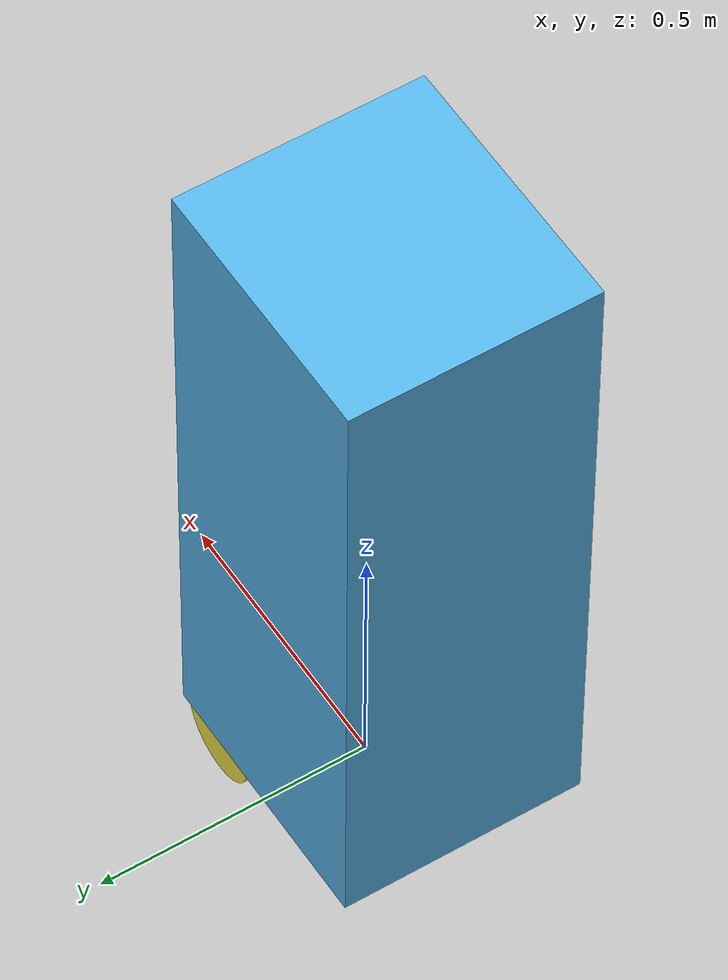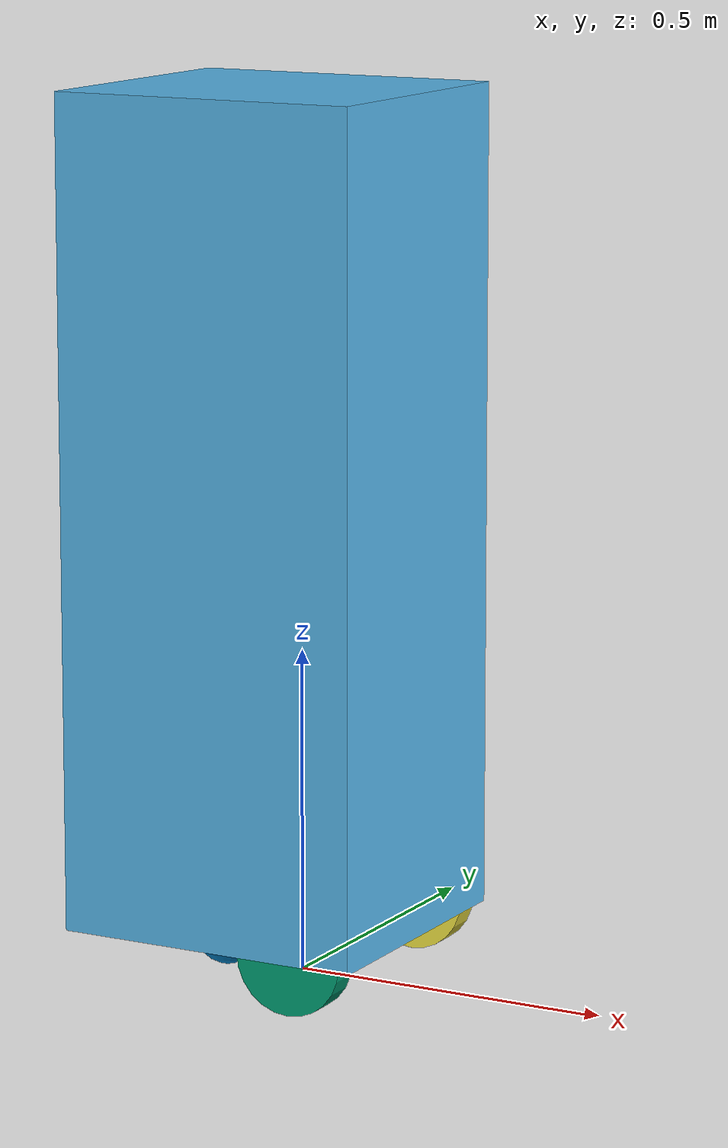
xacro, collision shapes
<?xml version="1.0" ?>
<robot name="sitoe" xmlns:xacro="http://www.ros.org/wiki/xacro">

  <xacro:include filename="inertial_macros.xacro"/>

  <!-- Robot's base properties -->
  <xacro:property name="base_length" value="0.4437"/>
  <xacro:property name="base_width" value="1.2714"/>
  <xacro:property name="base_height" value="0.4858"/>

  <!-- Robot's wheel properties -->
  <xacro:property name="wheel_radius" value="0.086"/>
  <xacro:property name="wheel_height" value="0.0446"/>
  <xacro:property name="wheel_mass" value="2.2"/>

  <xacro:property name="caster_wheel_radius" value="0.0508"/>

  <link name="base_footprint"/>

  <joint name="base_joint" type="fixed">
    <parent link="base_footprint"/>
    <child link="base_link"/>
    <origin rpy="0 0 ${pi/2}" xyz="0.0 0.0 0.0381"/>
  </joint>

  <!-- Robot chassis -->
  <link name="base_link">
    <visual>
      <origin rpy="${pi/2} 0 0" xyz="0.0 0.0 0.0"/>
      <geometry>
        <mesh filename="package://parc_robot_description/meshes/sitoe_chassis.dae"/>
      </geometry>
    </visual>
    <collision>
      <origin rpy="${pi/2} 0 0" xyz="0.0 0.0454341 0.67537"/>
      <geometry>
        <box size="${base_length} ${base_width} ${base_height}"/>
      </geometry>
    </collision>

    <xacro:box_inertia mass="15.0" length="${base_length}" width="${base_width}" height="${base_height}">
      <origin rpy="${pi/2} 0 0" xyz="0.0 0 0.67537"/>
    </xacro:box_inertia>
  </link>

  <!-- Robot chassis bumper -->
  <gazebo reference="base_link">
    <sensor name="base_collision_sensor" type="contact">
      <contact>
        <collision>base_footprint_fixed_joint_lump__base_link_collision</collision>
        <topic>base_collisions</topic>
      </contact>
      <always_on>true</always_on>
      <update_rate>5</update_rate>
    </sensor>
  </gazebo>

  <!-- Right wheel -->
  <link name="right_wheel_link">
    <visual>
      <origin rpy="0 -${pi/2} 0" xyz="0.0956 -0.0435 0.1965"/> <!-- up, forward, sideways-->
      <geometry>
        <mesh filename="package://parc_robot_description/meshes/right_wheel.dae"/>
      </geometry>
    </visual>
    <collision>
      <origin rpy="0 0 0" xyz="0.0 0.0 0.0"/>
      <geometry>
        <cylinder length="${wheel_height}" radius="${wheel_radius}"/>
      </geometry>
    </collision>

    <xacro:cylinder_inertia mass="${wheel_mass}" length="${wheel_height}" radius="${wheel_radius}">
      <origin rpy="0 0 0" xyz="0.0 0.0 0.0"/>
    </xacro:cylinder_inertia>
  </link>

  <!-- Right wheel bumper -->
  <gazebo reference="right_wheel_link">
    <sensor name="right_wheel_collision_sensor" type="contact">
      <contact>
        <collision>right_wheel_link_collision</collision>
        <topic>right_wheel_collisions</topic>
      </contact>
      <always_on>true</always_on>
      <update_rate>5</update_rate>
    </sensor>
  </gazebo>

  <joint name="right_wheel_joint" type="continuous">
    <parent link="base_link"/>
    <child link="right_wheel_link"/>
    <origin rpy="0 ${pi/2} 0" xyz="-0.19649 -0.0945 0.0476"/>
    <axis xyz="0 0 1"/>
  </joint>

  <!-- Left wheel -->
  <link name="left_wheel_link">
    <visual>
      <origin rpy="0 ${pi/2} 0" xyz="-0.0935 -0.044 0.1965"/>
      <geometry>
        <mesh filename="package://parc_robot_description/meshes/left_wheel.dae"/>
      </geometry>
    </visual>
    <collision>
      <origin rpy="0 0 0" xyz="0.0 0.0 0.0"/>
      <geometry>
        <cylinder length="${wheel_height}" radius="${wheel_radius}"/>
      </geometry>
    </collision>

    <xacro:cylinder_inertia mass="${wheel_mass}" length="${wheel_height}" radius="${wheel_radius}">
      <origin rpy="0 0 0" xyz="0.0 0.0 0.0"/>
    </xacro:cylinder_inertia>
  </link>

  <!-- Left wheel bumper -->
  <gazebo reference="left_wheel_link">
    <sensor name="left_wheel_collision_sensor" type="contact">
      <contact>
        <collision>left_wheel_link_collision</collision>
        <topic>left_wheel_collisions</topic>
      </contact>
      <always_on>true</always_on>
      <update_rate>5</update_rate>
    </sensor>
  </gazebo>

  <joint name="left_wheel_joint" type="continuous">
    <parent link="base_link"/>
    <child link="left_wheel_link"/>
    <origin rpy="0 -${pi/2} 0" xyz="0.19649 -0.095 0.0476"/>
    <axis xyz="0 0 -1"/>
  </joint>

  <!-- Caster wheel -->
  <link name="caster_wheel_link">
    <visual>
      <origin rpy="${pi/2} 0 ${pi/2}" xyz="0.133 0.0 0.0"/>
      <geometry>
        <mesh filename="package://parc_robot_description/meshes/caster_wheel.dae"/>
      </geometry>
    </visual>
    <collision>
      <origin xyz="0.0 0.0 0.0026" rpy="0 0 0"/>
      <geometry>
        <sphere radius="${caster_wheel_radius}"/>
      </geometry>
    </collision>

    <xacro:sphere_inertia mass="0.45" radius="${caster_wheel_radius}">
      <origin rpy="0 0 0" xyz="0.0 0.0 0.0"/>
    </xacro:sphere_inertia>
  </link>

  <joint name="caster_wheel_joint" type="fixed">
    <parent link="base_link"/>
    <child link="caster_wheel_link"/>
    <origin rpy="0 0 -${pi/2}" xyz="0.0 0.133 0.0"/>
  </joint>

  <!-- Friction -->
  <gazebo reference="base_link">
    <mu1>0.2</mu1>
    <mu2>0.2</mu2>
  </gazebo>

  <gazebo reference="right_wheel_link">
    <mu1>0.9</mu1>
    <mu2>0.7</mu2>
    <kp>10000000.0</kp>
    <kd>0.0</kd>
    <kd>1.0</kd>
    <minDepth>0.001</minDepth>
  </gazebo>

  <gazebo reference="left_wheel_link">
    <mu1>0.9</mu1>
    <mu2>0.7</mu2>
    <kp>10000000.0</kp>
    <kd>0.0</kd>
    <kd>1.0</kd>
    <minDepth>0.001</minDepth>
  </gazebo>

</robot>
